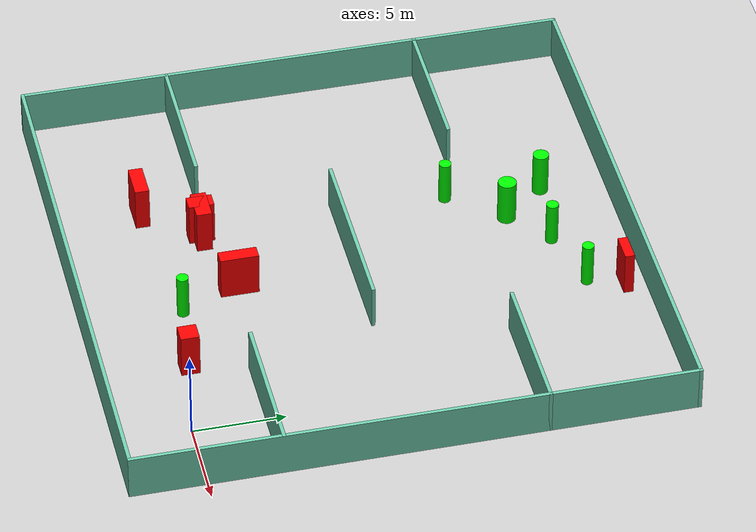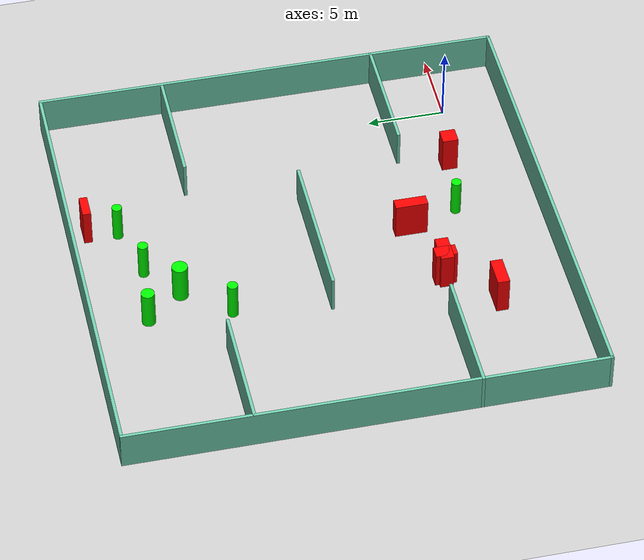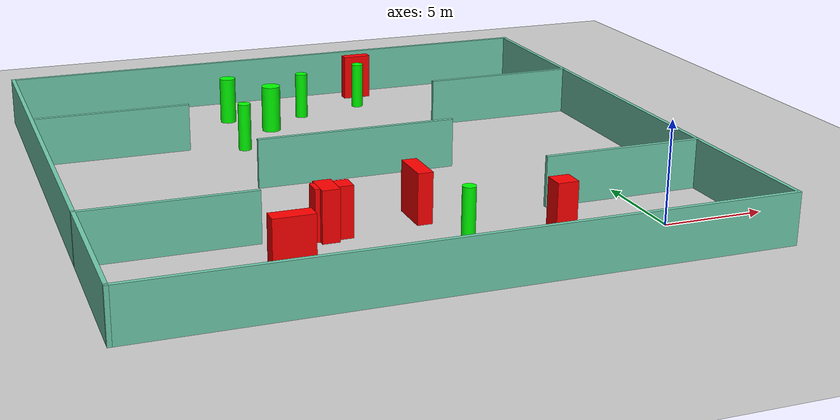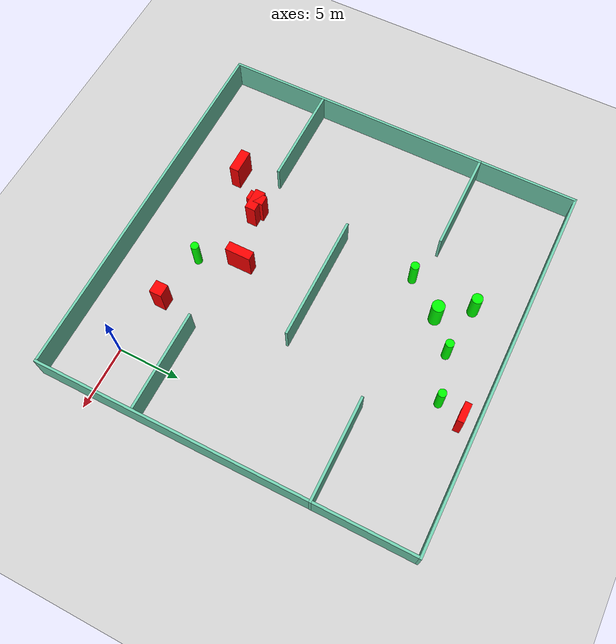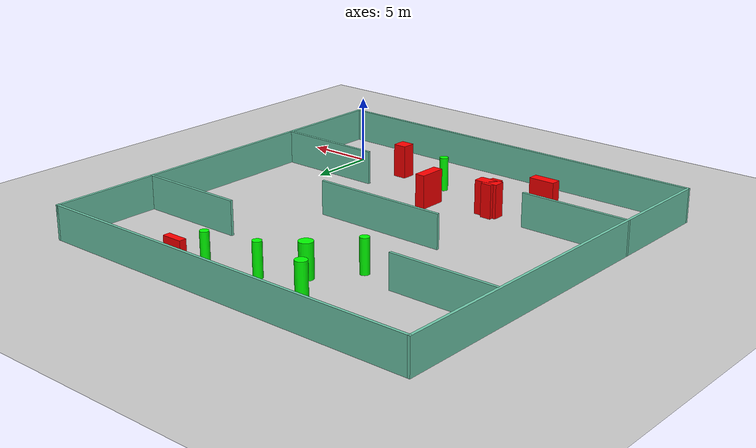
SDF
<sdf version="1.7">
 <world name="default">
  <light name="sun" type="directional">
   <pose>0 0 10 0 -0 0</pose>
   <diffuse>0.8 0.8 0.8 1</diffuse>
   <specular>0.2 0.2 0.2 1</specular>
   <attenuation>
    <range>1000</range>
    <constant>0.9</constant>
    <linear>0.01</linear>
    <quadratic>0.001</quadratic>
   </attenuation>
   <direction>-0.5 0.1 -0.9</direction>
   <spot><inner_angle>0</inner_angle><outer_angle>0</outer_angle><falloff>0</falloff></spot>
  </light>
  <model name="ground_plane">
   <static>1</static>
   <link name="link">
    <collision name="collision">
     <geometry><plane><normal>0 0 1</normal><size>100 100</size></plane></geometry>
     <surface>
      <contact><collide_bitmask>65535</collide_bitmask></contact>
      <friction><ode><mu>100</mu><mu2>50</mu2></ode></friction>
     </surface>
    </collision>
    <visual name="visual">
     <cast_shadows>0</cast_shadows>
     <geometry><plane><normal>0 0 1</normal><size>100 100</size></plane></geometry>
     <material>
      <script><uri>file://media/materials/scripts/gazebo.material</uri><name>Gazebo/Grey</name></script>
     </material>
    </visual>
   </link>
  </model>
  <gravity>0 0 -9.8</gravity>
  <magnetic_field>6e-06 2.3e-05 -4.2e-05</magnetic_field>
  <atmosphere type="adiabatic"/>
  <physics type="ode">
   <max_step_size>0.001</max_step_size>
   <real_time_factor>1</real_time_factor>
   <real_time_update_rate>1000</real_time_update_rate>
  </physics>
  <scene><ambient>0.4 0.4 0.4 1</ambient><background>0.7 0.7 0.7 1</background><shadows>1</shadows></scene>
  <spherical_coordinates>
   <surface_model>EARTH_WGS84</surface_model>
   <latitude_deg>0</latitude_deg>
   <longitude_deg>0</longitude_deg>
   <elevation>0</elevation>
   <heading_deg>0</heading_deg>
  </spherical_coordinates>
  <model name="my_base_walls">
   <link name="Wall_10">
    <collision name="Wall_10_Collision">
     <geometry><box><size>8.2 0.2 2.5</size></box></geometry>
     <pose>0 0 1.25 0 -0 0</pose>
    </collision>
    <visual name="Wall_10_Visual">
     <pose>0 0 1.25 0 -0 0</pose>
     <geometry><box><size>8.2 0.2 2.5</size></box></geometry>
     <material>
      <script><uri>file://media/materials/scripts/gazebo.material</uri><name>Gazebo/Grey</name></script>
      <ambient>0.435294 0.796078 0.67451 1</ambient>
     </material>
     <meta><layer>0</layer></meta>
    </visual>
    <pose>-11 -7 0 0 -0 0</pose>
   </link>
   <link name="Wall_12">
    <collision name="Wall_12_Collision">
     <geometry><box><size>8.2 0.2 2.5</size></box></geometry>
     <pose>0 0 1.25 0 -0 0</pose>
    </collision>
    <visual name="Wall_12_Visual">
     <pose>0 0 1.25 0 -0 0</pose>
     <geometry><box><size>8.2 0.2 2.5</size></box></geometry>
     <material>
      <script><uri>file://media/materials/scripts/gazebo.material</uri><name>Gazebo/Grey</name></script>
      <ambient>0.435294 0.796078 0.67451 1</ambient>
     </material>
     <meta><layer>0</layer></meta>
    </visual>
    <pose>-11 7 0 0 -0 0</pose>
   </link>
   <link name="Wall_14">
    <collision name="Wall_14_Collision">
     <geometry><box><size>8.2 0.2 2.5</size></box></geometry>
     <pose>0 0 1.25 0 -0 0</pose>
    </collision>
    <visual name="Wall_14_Visual">
     <pose>0 0 1.25 0 -0 0</pose>
     <geometry><box><size>8.2 0.2 2.5</size></box></geometry>
     <material>
      <script><uri>file://media/materials/scripts/gazebo.material</uri><name>Gazebo/Grey</name></script>
      <ambient>0.435294 0.796078 0.67451 1</ambient>
     </material>
     <meta><layer>0</layer></meta>
    </visual>
    <pose>11 7 0 0 -0 3.14159</pose>
   </link>
   <link name="Wall_16">
    <collision name="Wall_16_Collision">
     <geometry><box><size>10.2 0.2 2.5</size></box></geometry>
     <pose>0 0 1.25 0 -0 0</pose>
    </collision>
    <visual name="Wall_16_Visual">
     <pose>0 0 1.25 0 -0 0</pose>
     <geometry><box><size>10.2 0.2 2.5</size></box></geometry>
     <material>
      <script><uri>file://media/materials/scripts/gazebo.material</uri><name>Gazebo/Grey</name></script>
      <ambient>0.435294 0.796078 0.67451 1</ambient>
     </material>
     <meta><layer>0</layer></meta>
    </visual>
    <pose>0 0 0 0 -0 3.14159</pose>
   </link>
   <link name="Wall_2">
    <collision name="Wall_2_Collision">
     <geometry><box><size>30.2 0.2 2.5</size></box></geometry>
     <pose>0 0 1.25 0 -0 0</pose>
    </collision>
    <visual name="Wall_2_Visual">
     <pose>0 0 1.25 0 -0 0</pose>
     <geometry><box><size>30.2 0.2 2.5</size></box></geometry>
     <material>
      <script><uri>file://media/materials/scripts/gazebo.material</uri><name>Gazebo/Grey</name></script>
      <ambient>0.435294 0.796078 0.67451 1</ambient>
     </material>
     <meta><layer>0</layer></meta>
    </visual>
    <pose>0 -15 0 0 -0 3.14159</pose>
   </link>
   <link name="Wall_3">
    <collision name="Wall_3_Collision">
     <geometry><box><size>30.2 0.2 2.5</size></box></geometry>
     <pose>0 0 1.25 0 -0 0</pose>
    </collision>
    <visual name="Wall_3_Visual">
     <pose>0 0 1.25 0 -0 0</pose>
     <geometry><box><size>30.2 0.2 2.5</size></box></geometry>
     <material>
      <script><uri>file://media/materials/scripts/gazebo.material</uri><name>Gazebo/Grey</name></script>
      <ambient>0.435294 0.796078 0.67451 1</ambient>
     </material>
     <meta><layer>0</layer></meta>
    </visual>
    <pose>-15 0 0 0 -0 1.5708</pose>
   </link>
   <link name="Wall_4">
    <collision name="Wall_4_Collision">
     <geometry><box><size>30.2 0.2 2.5</size></box></geometry>
     <pose>0 0 1.25 0 -0 0</pose>
    </collision>
    <visual name="Wall_4_Visual">
     <pose>0 0 1.25 0 -0 0</pose>
     <geometry><box><size>30.2 0.2 2.5</size></box></geometry>
     <material>
      <script><uri>file://media/materials/scripts/gazebo.material</uri><name>Gazebo/Grey</name></script>
      <ambient>0.435294 0.796078 0.67451 1</ambient>
     </material>
     <meta><layer>0</layer></meta>
    </visual>
    <pose>0 15 0 0 -0 0</pose>
   </link>
   <link name="Wall_6">
    <collision name="Wall_6_Collision">
     <geometry><box><size>30.2 0.2 2.5</size></box></geometry>
     <pose>0 0 1.25 0 -0 0</pose>
    </collision>
    <visual name="Wall_6_Visual">
     <pose>0 0 1.25 0 -0 0</pose>
     <geometry><box><size>30.2 0.2 2.5</size></box></geometry>
     <material>
      <script><uri>file://media/materials/scripts/gazebo.material</uri><name>Gazebo/Grey</name></script>
      <ambient>0.435294 0.796078 0.67451 1</ambient>
     </material>
     <meta><layer>0</layer></meta>
    </visual>
    <pose>15 0 0 0 -0 1.5708</pose>
   </link>
   <link name="Wall_8">
    <collision name="Wall_8_Collision">
     <geometry><box><size>8.2 0.2 2.5</size></box></geometry>
     <pose>0 0 1.25 0 -0 0</pose>
    </collision>
    <visual name="Wall_8_Visual">
     <pose>0 0 1.25 0 -0 0</pose>
     <geometry><box><size>8.2 0.2 2.5</size></box></geometry>
     <material>
      <script><uri>file://media/materials/scripts/gazebo.material</uri><name>Gazebo/Grey</name></script>
      <ambient>0.435294 0.796078 0.67451 1</ambient>
     </material>
     <meta><layer>0</layer></meta>
    </visual>
    <pose>11 -7 0 0 -0 3.14159</pose>
   </link>
   <static>1</static>
   <pose>-11 11 0 0 -0 0</pose>
  </model>
  <model name="cylinder1">
   <static>1</static>
   <link name="link">
    <inertial>
     <mass>1</mass>
     <inertia><ixx>0.5</ixx><ixy>0</ixy><ixz>0</ixz><iyy>0.5</iyy><iyz>0</iyz><izz>1</izz></inertia>
    </inertial>
    <collision name="collision">
     <geometry><cylinder><radius>0.4290714756970772</radius><length>2.5</length></cylinder></geometry>
    </collision>
    <visual name="visual">
     <geometry><cylinder><radius>0.4290714756970772</radius><length>2.5</length></cylinder></geometry>
     <material>
      <ambient>0 1 0 1</ambient>
      <diffuse>0 1 0 1</diffuse>
      <specular>0.1 0.1 0.1 1</specular>
      <emissive>0 0 0 0</emissive>
     </material>
    </visual>
   </link>
   <pose>-14.69974598024751 22.349808892501706 1.25 0 0 0</pose>
  </model>
  <model name="cylinder2">
   <static>1</static>
   <link name="link">
    <inertial>
     <mass>1</mass>
     <inertia><ixx>0.5</ixx><ixy>0</ixy><ixz>0</ixz><iyy>0.5</iyy><iyz>0</iyz><izz>1</izz></inertia>
    </inertial>
    <collision name="collision">
     <geometry><cylinder><radius>0.33356465005566244</radius><length>2.5</length></cylinder></geometry>
    </collision>
    <visual name="visual">
     <geometry><cylinder><radius>0.33356465005566244</radius><length>2.5</length></cylinder></geometry>
     <material>
      <ambient>0 1 0 1</ambient>
      <diffuse>0 1 0 1</diffuse>
      <specular>0.1 0.1 0.1 1</specular>
      <emissive>0 0 0 0</emissive>
     </material>
    </visual>
   </link>
   <pose>-10.522809536374986 21.904917924570142 1.25 0 0 0</pose>
  </model>
  <model name="cylinder3">
   <static>1</static>
   <link name="link">
    <inertial>
     <mass>1</mass>
     <inertia><ixx>0.5</ixx><ixy>0</ixy><ixz>0</ixz><iyy>0.5</iyy><iyz>0</iyz><izz>1</izz></inertia>
    </inertial>
    <collision name="collision">
     <geometry><cylinder><radius>0.5023598136986165</radius><length>2.5</length></cylinder></geometry>
    </collision>
    <visual name="visual">
     <geometry><cylinder><radius>0.5023598136986165</radius><length>2.5</length></cylinder></geometry>
     <material>
      <ambient>0 1 0 1</ambient>
      <diffuse>0 1 0 1</diffuse>
      <specular>0.1 0.1 0.1 1</specular>
      <emissive>0 0 0 0</emissive>
     </material>
    </visual>
   </link>
   <pose>-12.855809075508287 20.005830712391468 1.25 0 0 0</pose>
  </model>
  <model name="cylinder4">
   <static>1</static>
   <link name="link">
    <inertial>
     <mass>1</mass>
     <inertia><ixx>0.5</ixx><ixy>0</ixy><ixz>0</ixz><iyy>0.5</iyy><iyz>0</iyz><izz>1</izz></inertia>
    </inertial>
    <collision name="collision">
     <geometry><cylinder><radius>0.3356250963545966</radius><length>2.5</length></cylinder></geometry>
    </collision>
    <visual name="visual">
     <geometry><cylinder><radius>0.3356250963545966</radius><length>2.5</length></cylinder></geometry>
     <material>
      <ambient>0 1 0 1</ambient>
      <diffuse>0 1 0 1</diffuse>
      <specular>0.1 0.1 0.1 1</specular>
      <emissive>0 0 0 0</emissive>
     </material>
    </visual>
   </link>
   <pose>-15.126853835618354 17.13216862852439 1.25 0 0 0</pose>
  </model>
  <model name="cylinder5">
   <static>1</static>
   <link name="link">
    <inertial>
     <mass>1</mass>
     <inertia><ixx>0.5</ixx><ixy>0</ixy><ixz>0</ixz><iyy>0.5</iyy><iyz>0</iyz><izz>1</izz></inertia>
    </inertial>
    <collision name="collision">
     <geometry><cylinder><radius>0.32140869710189923</radius><length>2.5</length></cylinder></geometry>
    </collision>
    <visual name="visual">
     <geometry><cylinder><radius>0.32140869710189923</radius><length>2.5</length></cylinder></geometry>
     <material>
      <ambient>0 1 0 1</ambient>
      <diffuse>0 1 0 1</diffuse>
      <specular>0.1 0.1 0.1 1</specular>
      <emissive>0 0 0 0</emissive>
     </material>
    </visual>
   </link>
   <pose>-6.828148916719389 22.888528463638345 1.25 0 0 0</pose>
  </model>
  <model name="cylinder6">
   <static>1</static>
   <link name="link">
    <inertial>
     <mass>1</mass>
     <inertia><ixx>0.5</ixx><ixy>0</ixy><ixz>0</ixz><iyy>0.5</iyy><iyz>0</iyz><izz>1</izz></inertia>
    </inertial>
    <collision name="collision">
     <geometry><cylinder><radius>0.323375908839312</radius><length>2.5</length></cylinder></geometry>
    </collision>
    <visual name="visual">
     <geometry><cylinder><radius>0.323375908839312</radius><length>2.5</length></cylinder></geometry>
     <material>
      <ambient>0 1 0 1</ambient>
      <diffuse>0 1 0 1</diffuse>
      <specular>0.1 0.1 0.1 1</specular>
      <emissive>0 0 0 0</emissive>
     </material>
    </visual>
   </link>
   <pose>-9.135154986957211 1.4446273902965228 1.25 0 0 0</pose>
  </model>
  <model name="box1">
   <static>1</static>
   <link name="link">
    <inertial>
     <mass>1</mass>
     <inertia><ixx>0.083</ixx><ixy>0</ixy><ixz>0</ixz><iyy>0.083</iyy><iyz>0</iyz><izz>0.083</izz></inertia>
    </inertial>
    <collision name="collision">
     <geometry><box><size>1.5421415343861664 0.5267448124449905 2.5</size></box></geometry>
    </collision>
    <visual name="visual">
     <geometry><box><size>1.5421415343861664 0.5267448124449905 2.5</size></box></geometry>
     <material>
      <ambient>1 0 0 1</ambient>
      <diffuse>1 0 0 1</diffuse>
      <specular>0.1 0.1 0.1 1</specular>
      <emissive>0 0 0 0</emissive>
     </material>
    </visual>
    <sensor name="my_contact" type="contact">
     <contact><collision>box_collision</collision><topic>__default_topic__</topic></contact>
    </sensor>
   </link>
   <pose>-6.25068503913433 24.816089395422335 1.25 0 0 0</pose>
  </model>
  <model name="box2">
   <static>1</static>
   <link name="link">
    <inertial>
     <mass>1</mass>
     <inertia><ixx>0.083</ixx><ixy>0</ixy><ixz>0</ixz><iyy>0.083</iyy><iyz>0</iyz><izz>0.083</izz></inertia>
    </inertial>
    <collision name="collision">
     <geometry><box><size>0.8436785761332454 1.3901764607739617 2.5</size></box></geometry>
    </collision>
    <visual name="visual">
     <geometry><box><size>0.8436785761332454 1.3901764607739617 2.5</size></box></geometry>
     <material>
      <ambient>1 0 0 1</ambient>
      <diffuse>1 0 0 1</diffuse>
      <specular>0.1 0.1 0.1 1</specular>
      <emissive>0 0 0 0</emissive>
     </material>
    </visual>
    <sensor name="my_contact" type="contact">
     <contact><collision>box_collision</collision><topic>__default_topic__</topic></contact>
    </sensor>
   </link>
   <pose>-15.015733868686253 3.618006836376118 1.25 0 0 0</pose>
  </model>
  <model name="box3">
   <static>1</static>
   <link name="link">
    <inertial>
     <mass>1</mass>
     <inertia><ixx>0.083</ixx><ixy>0</ixy><ixz>0</ixz><iyy>0.083</iyy><iyz>0</iyz><izz>0.083</izz></inertia>
    </inertial>
    <collision name="collision">
     <geometry><box><size>1.7954342127135041 0.8458718189784962 2.5</size></box></geometry>
    </collision>
    <visual name="visual">
     <geometry><box><size>1.7954342127135041 0.8458718189784962 2.5</size></box></geometry>
     <material>
      <ambient>1 0 0 1</ambient>
      <diffuse>1 0 0 1</diffuse>
      <specular>0.1 0.1 0.1 1</specular>
      <emissive>0 0 0 0</emissive>
     </material>
    </visual>
    <sensor name="my_contact" type="contact">
     <contact><collision>box_collision</collision><topic>__default_topic__</topic></contact>
    </sensor>
   </link>
   <pose>-14.779860724050588 3.621972305527022 1.25 0 0 0</pose>
  </model>
  <model name="box4">
   <static>1</static>
   <link name="link">
    <inertial>
     <mass>1</mass>
     <inertia><ixx>0.083</ixx><ixy>0</ixy><ixz>0</ixz><iyy>0.083</iyy><iyz>0</iyz><izz>0.083</izz></inertia>
    </inertial>
    <collision name="collision">
     <geometry><box><size>0.7438487003690775 2.0785247320857927 2.5</size></box></geometry>
    </collision>
    <visual name="visual">
     <geometry><box><size>0.7438487003690775 2.0785247320857927 2.5</size></box></geometry>
     <material>
      <ambient>1 0 0 1</ambient>
      <diffuse>1 0 0 1</diffuse>
      <specular>0.1 0.1 0.1 1</specular>
      <emissive>0 0 0 0</emissive>
     </material>
    </visual>
    <sensor name="my_contact" type="contact">
     <contact><collision>box_collision</collision><topic>__default_topic__</topic></contact>
    </sensor>
   </link>
   <pose>-10.29924081192604 4.697073428918353 1.25 0 0 0</pose>
  </model>
  <model name="box5">
   <static>1</static>
   <link name="link">
    <inertial>
     <mass>1</mass>
     <inertia><ixx>0.083</ixx><ixy>0</ixy><ixz>0</ixz><iyy>0.083</iyy><iyz>0</iyz><izz>0.083</izz></inertia>
    </inertial>
    <collision name="collision">
     <geometry><box><size>1.0228113149895126 1.0030230849988917 2.5</size></box></geometry>
    </collision>
    <visual name="visual">
     <geometry><box><size>1.0228113149895126 1.0030230849988917 2.5</size></box></geometry>
     <material>
      <ambient>1 0 0 1</ambient>
      <diffuse>1 0 0 1</diffuse>
      <specular>0.1 0.1 0.1 1</specular>
      <emissive>0 0 0 0</emissive>
     </material>
    </visual>
    <sensor name="my_contact" type="contact">
     <contact><collision>box_collision</collision><topic>__default_topic__</topic></contact>
    </sensor>
   </link>
   <pose>-4.831605539172921 0.8693412406241721 1.25 0 0 0</pose>
  </model>
  <model name="box6">
   <static>1</static>
   <link name="link">
    <inertial>
     <mass>1</mass>
     <inertia><ixx>0.083</ixx><ixy>0</ixy><ixz>0</ixz><iyy>0.083</iyy><iyz>0</iyz><izz>0.083</izz></inertia>
    </inertial>
    <collision name="collision">
     <geometry><box><size>1.9500001986467848 0.7745344854689558 2.5</size></box></geometry>
    </collision>
    <visual name="visual">
     <geometry><box><size>1.9500001986467848 0.7745344854689558 2.5</size></box></geometry>
     <material>
      <ambient>1 0 0 1</ambient>
      <diffuse>1 0 0 1</diffuse>
      <specular>0.1 0.1 0.1 1</specular>
      <emissive>0 0 0 0</emissive>
     </material>
    </visual>
    <sensor name="my_contact" type="contact">
     <contact><collision>box_collision</collision><topic>__default_topic__</topic></contact>
    </sensor>
   </link>
   <pose>-17.461976515586908 0.7579795308978912 1.25 0 0 0</pose>
  </model>
 </world>
</sdf>
